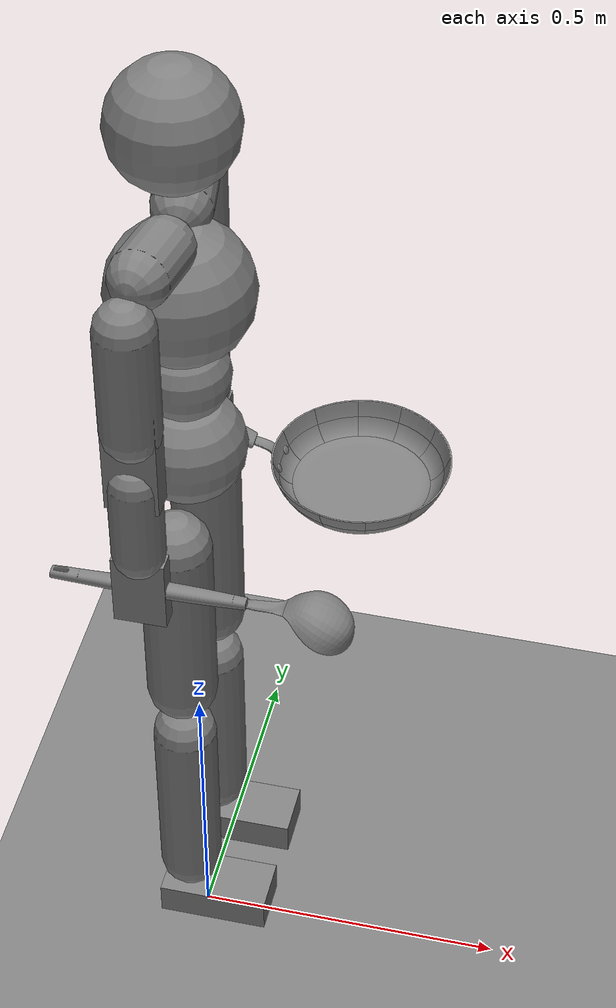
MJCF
<mujoco model="humanoid">

  <statistic extent="2" center="0 0 1"/>

  <option timestep="0.00555"/>

  <compiler meshdir="models"/>

  <asset>
    <mesh name="spoon_head_mesh" file="spoon_head.obj"/>
    <mesh name="spoon_neck_mesh" file="spoon_neck.obj"/>
    <mesh name="spoon_handle_mesh" file="spoon_handle.obj"/>
    <mesh name="handle_1_mesh" file="handle_1.obj"/>
    <mesh name="handle_2_mesh" file="handle_2.obj"/>
    <mesh name="knobs_mesh" file="knobs.obj"/>
    <mesh name="pan_00_mesh" file="pan_00.obj"/>
    <mesh name="pan_01_mesh" file="pan_01.obj"/>
    <mesh name="pan_02_mesh" file="pan_02.obj"/>
    <mesh name="pan_03_mesh" file="pan_03.obj"/>
    <mesh name="pan_04_mesh" file="pan_04.obj"/>
    <mesh name="pan_05_mesh" file="pan_05.obj"/>
    <mesh name="pan_06_mesh" file="pan_06.obj"/>
    <mesh name="pan_07_mesh" file="pan_07.obj"/>
    <mesh name="pan_08_mesh" file="pan_08.obj"/>
    <mesh name="pan_09_mesh" file="pan_09.obj"/>
    <mesh name="pan_10_mesh" file="pan_10.obj"/>
    <mesh name="pan_11_mesh" file="pan_11.obj"/>
    <mesh name="pan_12_mesh" file="pan_12.obj"/>
    <mesh name="pan_13_mesh" file="pan_13.obj"/>
    <mesh name="pan_14_mesh" file="pan_14.obj"/>
    <mesh name="pan_15_mesh" file="pan_15.obj"/>
    <mesh name="pan_16_mesh" file="pan_16.obj"/>
    <mesh name="pan_17_mesh" file="pan_17.obj"/>
    <mesh name="pan_18_mesh" file="pan_18.obj"/>
    <mesh name="pan_19_mesh" file="pan_19.obj"/>
    <mesh name="pan_20_mesh" file="pan_20.obj"/>
    <mesh name="pan_21_mesh" file="pan_21.obj"/>
    <mesh name="pan_22_mesh" file="pan_22.obj"/>
    <mesh name="pan_23_mesh" file="pan_23.obj"/>
    <mesh name="pan_bottom_mesh" file="pan_bottom.obj"/>
  </asset>

  <default>
    <motor ctrlrange="-1 1" ctrllimited="true"/>
    <default class="body">
      <geom type="capsule" condim="1" friction="1.0 0.05 0.05" solimp=".9 .99 .003" solref=".015 1"/>
      <joint type="hinge" damping="0.1" stiffness="5" armature=".007" limited="true" solimplimit="0 .99 .01"/>
      <site size=".04" group="3"/>
      <default class="force-torque">
        <site type="box" size=".01 .01 .02" rgba="1 0 0 1"/>
      </default>
      <default class="touch">
        <site type="capsule" rgba="0 0 1 .3"/>
      </default>
    </default>
  </default>

  <worldbody>
    <geom name="floor" type="plane" conaffinity="1" size="100 100 .2"/>
    <body name="pelvis" pos="0 0 1" childclass="body">
      <freejoint name="root"/>
      <site name="root" class="force-torque"/>
      <geom name="pelvis" type="sphere" pos="0 0 0.07" size=".09" density="2226"/>
      <geom name="upper_waist" type="sphere" pos="0 0 0.205" size="0.07" density="2226"/>
      <site name="pelvis" class="touch" type="sphere" pos="0 0 0.07" size="0.091"/>
      <site name="upper_waist" class="touch" type="sphere" pos="0 0 0.205" size="0.071"/>

      <body name="torso" pos="0 0 0.236151">
        <light name="top" pos="0 0 2" mode="trackcom"/>
        <camera name="back" pos="-3 0 1" xyaxes="0 -1 0 1 0 2" mode="trackcom"/>
        <camera name="side" pos="0 -3 1" xyaxes="1 0 0 0 1 2" mode="trackcom"/>
        <joint name="abdomen_x" pos="0 0 0" axis="1 0 0" range="-60 60" stiffness="1000" damping="100" armature=".02"/>
        <joint name="abdomen_y" pos="0 0 0" axis="0 1 0" range="-60 90" stiffness="1000" damping="100" armature=".02"/>
        <joint name="abdomen_z" pos="0 0 0" axis="0 0 1" range="-50 50" stiffness="1000" damping="100" armature=".02"/>
        <geom name="torso" type="sphere" pos="0 0 0.12" size="0.11" density="1794"/>
        <site name="torso" class="touch" type="sphere" pos="0 0 0.12" size="0.111"/>

        <geom name="right_clavicle" fromto="-0.0060125 -0.0457775 0.2287955 -0.016835 -0.128177 0.2376182" size=".045"
              density="1100"/>
        <geom name="left_clavicle" fromto="-0.0060125 0.0457775 0.2287955 -0.016835 0.128177 0.2376182" size=".045"
              density="1100"/>

        <body name="head" pos="0 0 0.223894">
          <joint name="neck_x" axis="1 0 0" range="-50 50" stiffness="100" damping="10" armature=".01"/>
          <joint name="neck_y" axis="0 1 0" range="-40 60" stiffness="100" damping="10" armature=".01"/>
          <joint name="neck_z" axis="0 0 1" range="-45 45" stiffness="100" damping="10" armature=".01"/>
          <geom name="head" type="sphere" pos="0 0 0.175" size="0.095" density="1081"/>
          <site name="head" class="touch" pos="0 0 0.175" type="sphere" size="0.103"/>
          <camera name="egocentric" pos=".103 0 0.175" xyaxes="0 -1 0 .1 0 1" fovy="80"/>
        </body>

        <body name="right_shoulder" pos="-0.02405 -0.08311 0.24350">
          <joint name="right_shoulder_x" axis="1 0 0" range="-180 180" stiffness="400" damping="40" armature=".02"/>
          <joint name="right_shoulder_y" axis="0 1 0" range="-180 180" stiffness="400" damping="40" armature=".02"/>
          <joint name="right_shoulder_z" axis="0 0 1" range="-180 180" stiffness="400" damping="40" armature=".02"/>

          <body name="right_upper_arm" pos="0 -0.1 0">
            <joint name="right_upper_arm_x" axis="1 0 0" range="-180 180" stiffness="400" damping="40" armature=".02"/>
            <joint name="right_upper_arm_y" axis="0 1 0" range="-180 180" stiffness="400" damping="40" armature=".02"/>
            <joint name="right_upper_arm_z" axis="0 0 1" range="-90 90" stiffness="400" damping="40" armature=".02"/>
            <geom name="right_upper_arm" fromto="0 0 -0.05 0 0 -0.23" size=".045" density="982"/>
            <site name="right_upper_arm" class="touch" pos="0 0 -0.14" size="0.046 0.1" zaxis="0 0 1"/>

            <body name="right_lower_arm" pos="0 0 -0.274788">
              <joint name="right_roll" axis="1 0 0" range="-180 180" stiffness="300" damping="30" armature=".01"/>
              <joint name="right_elbow" axis="0 1 0" range="-160 0" stiffness="300" damping="30" armature=".01"/>
              <joint name="right_yaw" axis="0 0 1" range="-180 180" stiffness="300" damping="30" armature=".01"/>
              <geom name="right_lower_arm" fromto="0 0 -0.0525 0 0 -0.1875" size="0.04" density="1056"/>
              <geom name="right_lower_arm_dummy" type="box" size="0.04 0.02 0.09" density="1056"/>
              <site name="right_lower_arm" class="touch" pos="0 0 -0.12" size="0.041 0.0685" zaxis="0 1 0"/>

              <body name="right_hand" pos="0 0 -0.258947">
                <joint name="right_hand_x" axis="1 0 0" range="-90 90" stiffness="100" damping="10" armature=".01"/>
                <joint name="right_hand_y" axis="0 1 0" range="-90 90" stiffness="100" damping="10" armature=".01"/>
                <joint name="right_hand_z" axis="0 0 1" range="-90 90" stiffness="100" damping="10" armature=".01"/>
                <geom name="right_hand" type="box" size=".04 .015 .06" density="1865"/>
                <site name="right_hand" class="touch" type="sphere" size=".041"/>

                <body name="spoon" pos="0.0 0 0">
                  <geom name="spoon_head" type="mesh" mesh="spoon_head_mesh" density="300"/>
                  <geom name="spoon_neck" type="mesh" mesh="spoon_neck_mesh" density="300"/>
                  <geom name="spoon_handle" type="mesh" mesh="spoon_handle_mesh" density="300"/>
                </body>
              </body>
            </body>
          </body>
        </body>

        <body name="left_shoulder" pos="-0.02405 0.08311 0.24350">
          <joint name="left_shoulder_x" axis="1 0 0" range="-180 180" stiffness="400" damping="40" armature=".02"/>
          <joint name="left_shoulder_y" axis="0 1 0" range="-180 180" stiffness="400" damping="40" armature=".02"/>
          <joint name="left_shoulder_z" axis="0 0 1" range="-90 90" stiffness="400" damping="40" armature=".02"/>

          <body name="left_upper_arm" pos="0 0.1 0">
            <joint name="left_upper_arm_x" axis="1 0 0" range="-180 180" stiffness="400" damping="40" armature=".02"/>
            <joint name="left_upper_arm_y" axis="0 1 0" range="-180 180" stiffness="400" damping="40" armature=".02"/>
            <joint name="left_upper_arm_z" axis="0 0 1" range="-90 90" stiffness="400" damping="40" armature=".02"/>
            <geom name="left_upper_arm" fromto="0 0 -0.05 0 0 -0.23" size="0.045" density="982"/>
            <site name="left_upper_arm" class="touch" pos="0 0 -0.14" size="0.046 0.1" zaxis="0 0 1"/>

            <body name="left_lower_arm" pos="0 0 -0.274788">
              <joint name="left_roll" axis="1 0 0" range="-180 180" stiffness="300" damping="30" armature=".01"/>
              <joint name="left_elbow" axis="0 1 0" range="-160 0" stiffness="300" damping="30" armature=".01"/>
              <joint name="left_yaw" axis="0 0 1" range="-180 180" stiffness="300" damping="30" armature=".01"/>
              <geom name="left_lower_arm" fromto="0 0 -0.0525 0 0 -0.1875" size="0.04" density="1056"/>
              <geom name="left_lower_arm_dummy" type="box" size="0.04 0.02 0.09" density="1056"/>
              <site name="left_lower_arm" class="touch" pos="0 0 -0.1" size="0.041 0.0685" zaxis="0 0 1"/>

              <body name="left_hand" pos="0 0 -0.258947">
                <joint name="left_hand_x" axis="1 0 0" range="-90 90" stiffness="100" damping="10" armature=".01"/>
                <joint name="left_hand_y" axis="0 1 0" range="-90 90" stiffness="100" damping="10" armature=".01"/>
                <joint name="left_hand_z" axis="0 0 1" range="-90 90" stiffness="100" damping="10" armature=".01"/>
                <geom name="left_hand" type="box" size=".04 .015 .06" density="1865"/>
                <site name="left_hand" class="touch" type="sphere" size=".041"/>

                <body name="pan" pos="0.0 0 0">
                  <geom name="handle_1" type="mesh" euler="0 0 0" mesh="handle_1_mesh" density="300"/>
                  <geom name="handle_2" type="mesh" euler="0 0 0" mesh="handle_2_mesh" density="300"/>
                  <geom name="knobs" type="mesh" euler="0 0 0" mesh="knobs_mesh" density="300"/>
                  <geom name="pan_bottom" type="mesh" euler="0 0 0" mesh="pan_bottom_mesh" density="300"/>
                  <geom name="pan_00" type="mesh" euler="0 0 0" mesh="pan_00_mesh" density="300"/>
                  <geom name="pan_01" type="mesh" euler="0 0 0" mesh="pan_01_mesh" density="300"/>
                  <geom name="pan_02" type="mesh" euler="0 0 0" mesh="pan_02_mesh" density="300"/>
                  <geom name="pan_03" type="mesh" euler="0 0 0" mesh="pan_03_mesh" density="300"/>
                  <geom name="pan_04" type="mesh" euler="0 0 0" mesh="pan_04_mesh" density="300"/>
                  <geom name="pan_05" type="mesh" euler="0 0 0" mesh="pan_05_mesh" density="300"/>
                  <geom name="pan_06" type="mesh" euler="0 0 0" mesh="pan_06_mesh" density="300"/>
                  <geom name="pan_07" type="mesh" euler="0 0 0" mesh="pan_07_mesh" density="300"/>
                  <geom name="pan_08" type="mesh" euler="0 0 0" mesh="pan_08_mesh" density="300"/>
                  <geom name="pan_09" type="mesh" euler="0 0 0" mesh="pan_09_mesh" density="300"/>
                  <geom name="pan_10" type="mesh" euler="0 0 0" mesh="pan_10_mesh" density="300"/>
                  <geom name="pan_11" type="mesh" euler="0 0 0" mesh="pan_11_mesh" density="300"/>
                  <geom name="pan_12" type="mesh" euler="0 0 0" mesh="pan_12_mesh" density="300"/>
                  <geom name="pan_13" type="mesh" euler="0 0 0" mesh="pan_13_mesh" density="300"/>
                  <geom name="pan_14" type="mesh" euler="0 0 0" mesh="pan_14_mesh" density="300"/>
                  <geom name="pan_15" type="mesh" euler="0 0 0" mesh="pan_15_mesh" density="300"/>
                  <geom name="pan_16" type="mesh" euler="0 0 0" mesh="pan_16_mesh" density="300"/>
                  <geom name="pan_17" type="mesh" euler="0 0 0" mesh="pan_17_mesh" density="300"/>
                  <geom name="pan_18" type="mesh" euler="0 0 0" mesh="pan_18_mesh" density="300"/>
                  <geom name="pan_19" type="mesh" euler="0 0 0" mesh="pan_19_mesh" density="300"/>
                  <geom name="pan_20" type="mesh" euler="0 0 0" mesh="pan_20_mesh" density="300"/>
                  <geom name="pan_21" type="mesh" euler="0 0 0" mesh="pan_21_mesh" density="300"/>
                  <geom name="pan_22" type="mesh" euler="0 0 0" mesh="pan_22_mesh" density="300"/>
                  <geom name="pan_23" type="mesh" euler="0 0 0" mesh="pan_23_mesh" density="300"/>
                </body>
              </body>
            </body>
          </body>
        </body>
      </body>

      <body name="right_thigh" pos="0 -0.084887 0">
        <site name="right_hip" class="force-torque"/>
        <joint name="right_hip_x" axis="1 0 0" range="-60 15" stiffness="500" damping="50" armature=".02"/>
        <joint name="right_hip_y" axis="0 1 0" range="-140 60" stiffness="500" damping="50" armature=".02"/>
        <joint name="right_hip_z" axis="0 0 1" range="-60 35" stiffness="500" damping="50" armature=".02"/>
        <geom name="right_thigh" fromto="0 0 -0.06 0 0 -0.36" size="0.055" density="1269"/>
        <site name="right_thigh" class="touch" pos="0 0 -0.21" size="0.056 0.301" zaxis="0 0 -1"/>

        <body name="right_shin" pos="0 0 -0.421546">
          <site name="right_knee" class="force-torque" pos="0 0 0"/>
          <joint name="right_knee" pos="0 0 0" axis="0 1 0" range="0 160" stiffness="500" damping="50" armature=".02"/>
          <geom name="right_shin" fromto="0 0 -0.045 0 0 -0.355" size=".05" density="1014"/>
          <site name="right_shin" class="touch" pos="0 0 -0.2" size="0.051 0.156" zaxis="0 0 -1"/>

          <body name="right_foot" pos="0 0 -0.409870">
            <site name="right_ankle" class="force-torque"/>
            <joint name="right_ankle_x" pos="0 0 0" axis="1 0 0" range="-30 30" stiffness="400" damping="40"
                   armature=".01"/>
            <joint name="right_ankle_y" pos="0 0 0" axis="0 1 0" range="-55 55" stiffness="400" damping="40"
                   armature=".01"/>
            <joint name="right_ankle_z" pos="0 0 0" axis="0 0 1" range="-40 40" stiffness="400" damping="40"
                   armature=".01"/>
            <geom name="right_foot" type="box" pos="0.045 0 -0.0225" size="0.0885 0.045 0.0275" density="1141"/>
            <site name="right_foot" class="touch" type="box" pos="0.045 0 -0.0225" size="0.0895 0.055 0.0285"/>
          </body>
        </body>
      </body>

      <body name="left_thigh" pos="0 0.084887 0">
        <site name="left_hip" class="force-torque"/>
        <joint name="left_hip_x" axis="1 0 0" range="-15 60" stiffness="500" damping="50" armature=".02"/>
        <joint name="left_hip_y" axis="0 1 0" range="-140 60" stiffness="500" damping="50" armature=".02"/>
        <joint name="left_hip_z" axis="0 0 1" range="-35 60" stiffness="500" damping="50" armature=".02"/>
        <geom name="left_thigh" fromto="0 0 -0.06 0 0 -0.36" size=".055" density="1269"/>
        <site name="left_thigh" class="touch" pos="0 0 -0.21" size="0.056 0.301" zaxis="0 0 -1"/>

        <body name="left_shin" pos="0 0 -0.421546">
          <site name="left_knee" class="force-torque" pos="0 0 .02"/>
          <joint name="left_knee" pos="0 0 0" axis="0 1 0" range="0 160" stiffness="500" damping="50" armature=".02"/>
          <geom name="left_shin" fromto="0 0 -0.045 0 0 -0.355" size=".05" density="1014"/>
          <site name="left_shin" class="touch" pos="0 0 -0.2" size="0.051 0.156" zaxis="0 0 -1"/>

          <body name="left_foot" pos="0 0 -0.409870">
            <site name="left_ankle" class="force-torque"/>
            <joint name="left_ankle_x" pos="0 0 0" axis="1 0 0" range="-30 30" stiffness="400" damping="40"
                   armature=".01"/>
            <joint name="left_ankle_y" pos="0 0 0" axis="0 1 0" range="-55 55" stiffness="400" damping="40"
                   armature=".01"/>
            <joint name="left_ankle_z" pos="0 0 0" axis="0 0 1" range="-40 40" stiffness="400" damping="40"
                   armature=".01"/>
            <geom name="left_foot" type="box" pos="0.045 0 -0.0225" size="0.0885 0.045 0.0275" density="1141"/>
            <site name="left_foot" class="touch" type="box" pos="0.045 0 -0.0225" size="0.0895 0.055 0.0285"/>
          </body>
        </body>
      </body>
    </body>
  </worldbody>

  <actuator>
    <motor name='abdomen_x' gear='200' joint='abdomen_x'/>
    <motor name='abdomen_y' gear='200' joint='abdomen_y'/>
    <motor name='abdomen_z' gear='200' joint='abdomen_z'/>
    <motor name='neck_x' gear='50' joint='neck_x'/>
    <motor name='neck_y' gear='50' joint='neck_y'/>
    <motor name='neck_z' gear='50' joint='neck_z'/>
    <motor name='right_shoulder_x' gear='100' joint='right_shoulder_x'/>
    <motor name='right_shoulder_y' gear='100' joint='right_shoulder_y'/>
    <motor name='right_shoulder_z' gear='100' joint='right_shoulder_z'/>
    <motor name='right_roll' gear='70' joint='right_roll'/>
    <motor name='right_elbow' gear='70' joint='right_elbow'/>
    <motor name='right_yaw' gear='70' joint='right_yaw'/>
    <motor name='right_hand_x' gear='50' joint='right_hand_x'/>
    <motor name='right_hand_y' gear='50' joint='right_hand_y'/>
    <motor name='right_hand_z' gear='50' joint='right_hand_z'/>
    <motor name='left_shoulder_x' gear='100' joint='left_shoulder_x'/>
    <motor name='left_shoulder_y' gear='100' joint='left_shoulder_y'/>
    <motor name='left_shoulder_z' gear='100' joint='left_shoulder_z'/>
    <motor name='left_roll' gear='70' joint='left_roll'/>
    <motor name='left_elbow' gear='70' joint='left_elbow'/>
    <motor name='left_yaw' gear='70' joint='left_yaw'/>
    <motor name='left_hand_x' gear='50' joint='left_hand_x'/>
    <motor name='left_hand_y' gear='50' joint='left_hand_y'/>
    <motor name='left_hand_z' gear='50' joint='left_hand_z'/>
    <motor name='right_hip_x' gear='200' joint='right_hip_x'/>
    <motor name='right_hip_z' gear='200' joint='right_hip_z'/>
    <motor name='right_hip_y' gear='200' joint='right_hip_y'/>
    <motor name='right_knee' gear='150' joint='right_knee'/>
    <motor name='right_ankle_x' gear='90' joint='right_ankle_x'/>
    <motor name='right_ankle_y' gear='90' joint='right_ankle_y'/>
    <motor name='right_ankle_z' gear='90' joint='right_ankle_z'/>
    <motor name='left_hip_x' gear='200' joint='left_hip_x'/>
    <motor name='left_hip_z' gear='200' joint='left_hip_z'/>
    <motor name='left_hip_y' gear='200' joint='left_hip_y'/>
    <motor name='left_knee' gear='150' joint='left_knee'/>
    <motor name='left_ankle_x' gear='90' joint='left_ankle_x'/>
    <motor name='left_ankle_y' gear='90' joint='left_ankle_y'/>
    <motor name='left_ankle_z' gear='90' joint='left_ankle_z'/>
  </actuator>

  <sensor>
    <subtreelinvel name="pelvis_subtreelinvel" body="pelvis"/>
    <accelerometer name="root_accel" site="root"/>
    <velocimeter name="root_vel" site="root"/>
    <gyro name="root_gyro" site="root"/>

    <force name="left_ankle_force" site="left_ankle"/>
    <force name="right_ankle_force" site="right_ankle"/>
    <force name="left_knee_force" site="left_knee"/>
    <force name="right_knee_force" site="right_knee"/>
    <force name="left_hip_force" site="left_hip"/>
    <force name="right_hip_force" site="right_hip"/>

    <torque name="left_ankle_torque" site="left_ankle"/>
    <torque name="right_ankle_torque" site="right_ankle"/>
    <torque name="left_knee_torque" site="left_knee"/>
    <torque name="right_knee_torque" site="right_knee"/>
    <torque name="left_hip_torque" site="left_hip"/>
    <torque name="right_hip_torque" site="right_hip"/>

    <touch name="pelvis_touch" site="pelvis"/>
    <touch name="upper_waist_touch" site="upper_waist"/>
    <touch name="torso_touch" site="torso"/>
    <touch name="head_touch" site="head"/>
    <touch name="right_upper_arm_touch" site="right_upper_arm"/>
    <touch name="right_lower_arm_touch" site="right_lower_arm"/>
    <touch name="right_hand_touch" site="right_hand"/>
    <touch name="left_upper_arm_touch" site="left_upper_arm"/>
    <touch name="left_lower_arm_touch" site="left_lower_arm"/>
    <touch name="left_hand_touch" site="left_hand"/>
    <touch name="right_thigh_touch" site="right_thigh"/>
    <touch name="right_shin_touch" site="right_shin"/>
    <touch name="right_foot_touch" site="right_foot"/>
    <touch name="left_thigh_touch" site="left_thigh"/>
    <touch name="left_shin_touch" site="left_shin"/>
    <touch name="left_foot_touch" site="left_foot"/>
  </sensor>

</mujoco>
